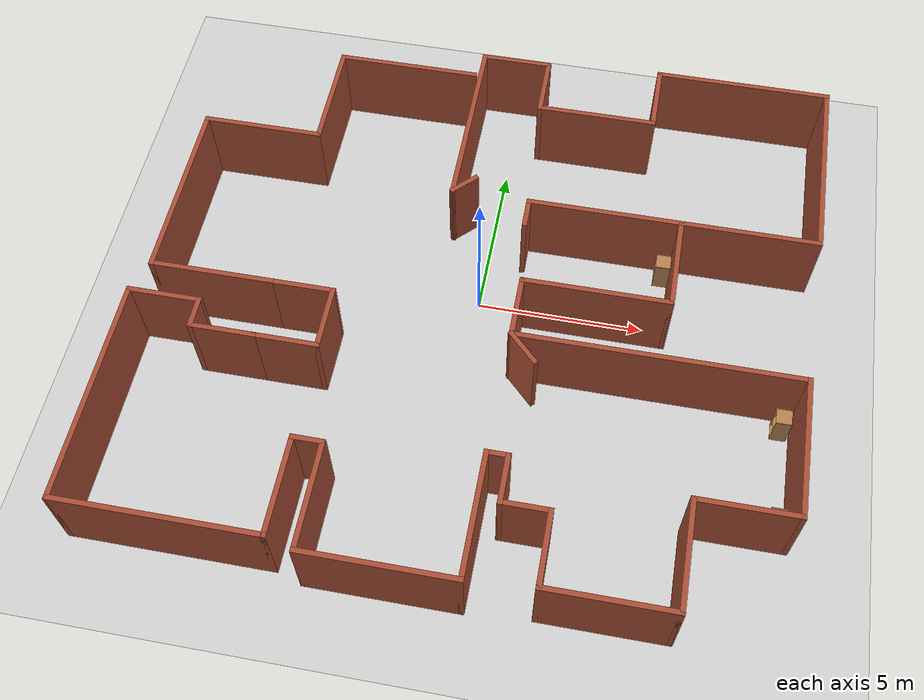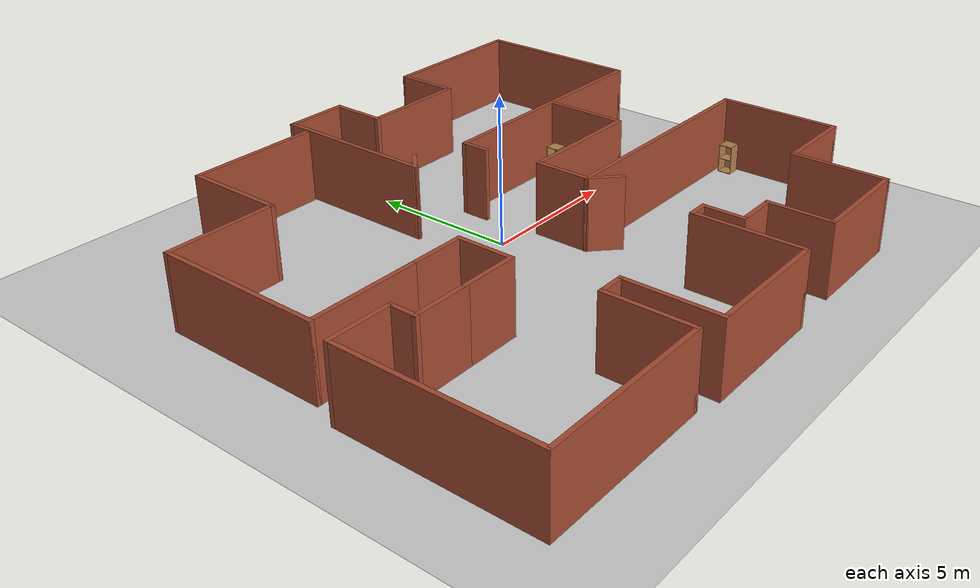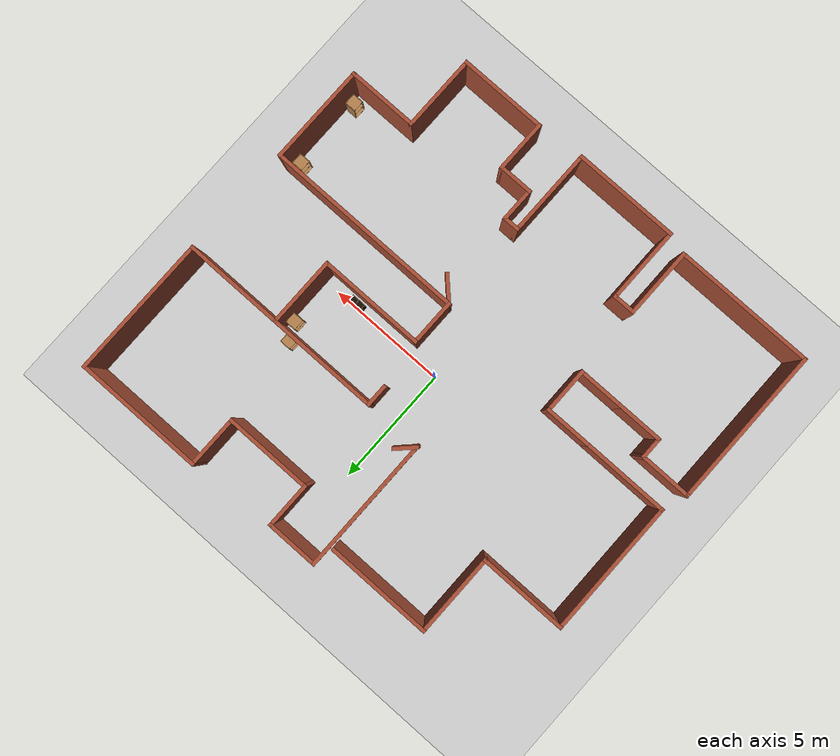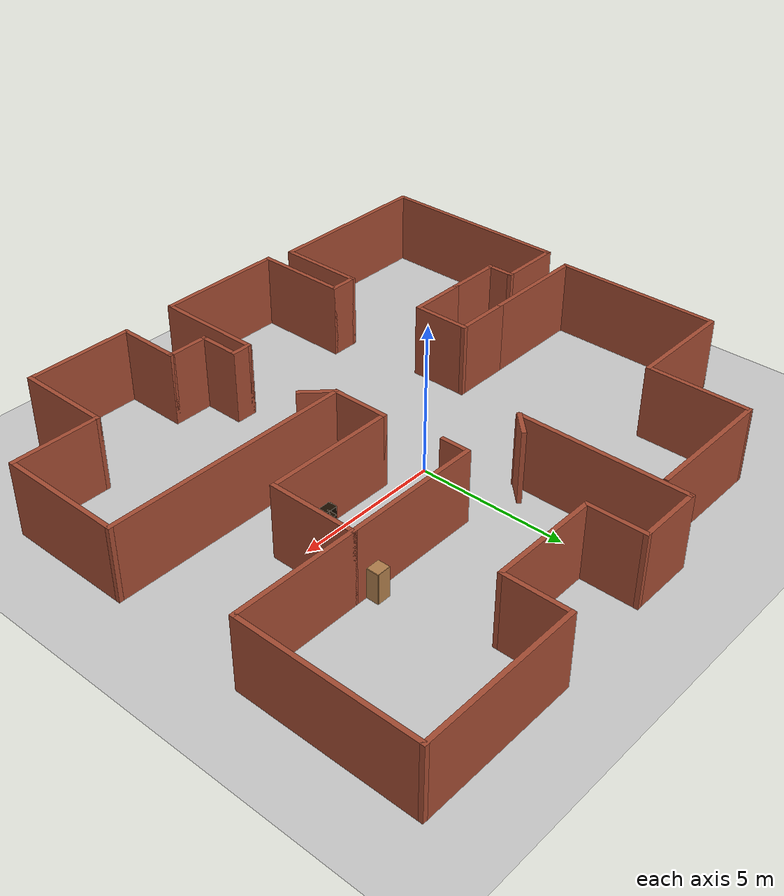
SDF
<sdf version="1.6">
 <world name="default">
  <model name="ground_plane">
   <static>1</static>
   <link name="link">
    <collision name="collision">
     <geometry><plane><normal>0 0 1</normal><size>100 100</size></plane></geometry>
     <surface>
      <contact><collide_bitmask>65535</collide_bitmask></contact>
      <friction><ode><mu>100</mu><mu2>50</mu2></ode></friction>
     </surface>
    </collision>
    <visual name="visual">
     <cast_shadows>0</cast_shadows>
     <geometry><plane><normal>0 0 1</normal><size>100 100</size></plane></geometry>
     <material>
      <script><uri>file://media/materials/scripts/gazebo.material</uri><name>Gazebo/Grey</name></script>
     </material>
    </visual>
   </link>
  </model>
  <model name="map_115">
   <pose>0.008465 -0.705591 0 0 -0 0</pose>
   <link name="Wall_16">
    <collision name="Wall_16_Collision">
     <geometry><box><size>6 0.15 2.5</size></box></geometry>
     <pose>0 0 1.25 0 -0 0</pose>
    </collision>
    <visual name="Wall_16_Visual">
     <pose>0 0 1.25 0 -0 0</pose>
     <geometry><box><size>6 0.15 2.5</size></box></geometry>
     <material>
      <script><uri>file://media/materials/scripts/gazebo.material</uri><name>Gazebo/Bricks</name></script>
      <ambient>1 1 1 1</ambient>
     </material>
     <meta><layer>0</layer></meta>
    </visual>
    <pose>-6.85 -8.7 0 0 -0 0</pose>
   </link>
   <link name="Wall_17">
    <collision name="Wall_17_Collision">
     <geometry><box><size>3 0.15 2.5</size></box></geometry>
     <pose>0 0 1.25 0 -0 0</pose>
    </collision>
    <visual name="Wall_17_Visual">
     <pose>0 0 1.25 0 -0 0</pose>
     <geometry><box><size>3 0.15 2.5</size></box></geometry>
     <material>
      <script><uri>file://media/materials/scripts/gazebo.material</uri><name>Gazebo/Bricks</name></script>
      <ambient>1 1 1 1</ambient>
     </material>
     <meta><layer>0</layer></meta>
    </visual>
    <pose>-3.925 -7.275 0 0 -0 1.5708</pose>
   </link>
   <link name="Wall_18">
    <collision name="Wall_18_Collision">
     <geometry><box><size>1 0.15 2.5</size></box></geometry>
     <pose>0 0 1.25 0 -0 0</pose>
    </collision>
    <visual name="Wall_18_Visual">
     <pose>0 0 1.25 0 -0 0</pose>
     <geometry><box><size>1 0.15 2.5</size></box></geometry>
     <material>
      <script><uri>file://media/materials/scripts/gazebo.material</uri><name>Gazebo/Bricks</name></script>
      <ambient>1 1 1 1</ambient>
     </material>
     <meta><layer>0</layer></meta>
    </visual>
    <pose>-3.5 -5.85 0 0 -0 0</pose>
   </link>
   <link name="Wall_19">
    <collision name="Wall_19_Collision">
     <geometry><box><size>3.25 0.15 2.5</size></box></geometry>
     <pose>0 0 1.25 0 -0 0</pose>
    </collision>
    <visual name="Wall_19_Visual">
     <pose>0 0 1.25 0 -0 0</pose>
     <geometry><box><size>3.25 0.15 2.5</size></box></geometry>
     <material>
      <script><uri>file://media/materials/scripts/gazebo.material</uri><name>Gazebo/Bricks</name></script>
      <ambient>1 1 1 1</ambient>
     </material>
     <meta><layer>0</layer></meta>
    </visual>
    <pose>-3.075 -7.4 0 0 -0 -1.5708</pose>
   </link>
   <link name="Wall_20">
    <collision name="Wall_20_Collision">
     <geometry><box><size>4.5 0.15 2.5</size></box></geometry>
     <pose>0 0 1.25 0 -0 0</pose>
    </collision>
    <visual name="Wall_20_Visual">
     <pose>0 0 1.25 0 -0 0</pose>
     <geometry><box><size>4.5 0.15 2.5</size></box></geometry>
     <material>
      <script><uri>file://media/materials/scripts/gazebo.material</uri><name>Gazebo/Bricks</name></script>
      <ambient>1 1 1 1</ambient>
     </material>
     <meta><layer>0</layer></meta>
    </visual>
    <pose>-0.9 -8.95 0 0 -0 0</pose>
   </link>
   <link name="Wall_21">
    <collision name="Wall_21_Collision">
     <geometry><box><size>3.75 0.15 2.5</size></box></geometry>
     <pose>0 0 1.25 0 -0 0</pose>
    </collision>
    <visual name="Wall_21_Visual">
     <pose>0 0 1.25 0 -0 0</pose>
     <geometry><box><size>3.75 0.15 2.5</size></box></geometry>
     <material>
      <script><uri>file://media/materials/scripts/gazebo.material</uri><name>Gazebo/Bricks</name></script>
      <ambient>1 1 1 1</ambient>
     </material>
     <meta><layer>0</layer></meta>
    </visual>
    <pose>1.275 -7.15 0 0 -0 1.5708</pose>
   </link>
   <link name="Wall_22">
    <collision name="Wall_22_Collision">
     <geometry><box><size>0.75 0.15 2.5</size></box></geometry>
     <pose>0 0 1.25 0 -0 0</pose>
    </collision>
    <visual name="Wall_22_Visual">
     <pose>0 0 1.25 0 -0 0</pose>
     <geometry><box><size>0.75 0.15 2.5</size></box></geometry>
     <material>
      <script><uri>file://media/materials/scripts/gazebo.material</uri><name>Gazebo/Bricks</name></script>
      <ambient>1 1 1 1</ambient>
     </material>
     <meta><layer>0</layer></meta>
    </visual>
    <pose>1.575 -5.35 0 0 -0 0</pose>
   </link>
   <link name="Wall_23">
    <collision name="Wall_23_Collision">
     <geometry><box><size>1.5 0.15 2.5</size></box></geometry>
     <pose>0 0 1.25 0 -0 0</pose>
    </collision>
    <visual name="Wall_23_Visual">
     <pose>0 0 1.25 0 -0 0</pose>
     <geometry><box><size>1.5 0.15 2.5</size></box></geometry>
     <material>
      <script><uri>file://media/materials/scripts/gazebo.material</uri><name>Gazebo/Bricks</name></script>
      <ambient>1 1 1 1</ambient>
     </material>
     <meta><layer>0</layer></meta>
    </visual>
    <pose>1.875 -6.025 0 0 -0 -1.5708</pose>
   </link>
   <link name="Wall_24">
    <collision name="Wall_24_Collision">
     <geometry><box><size>1.5 0.15 2.5</size></box></geometry>
     <pose>0 0 1.25 0 -0 0</pose>
    </collision>
    <visual name="Wall_24_Visual">
     <pose>0 0 1.25 0 -0 0</pose>
     <geometry><box><size>1.5 0.15 2.5</size></box></geometry>
     <material>
      <script><uri>file://media/materials/scripts/gazebo.material</uri><name>Gazebo/Bricks</name></script>
      <ambient>1 1 1 1</ambient>
     </material>
     <meta><layer>0</layer></meta>
    </visual>
    <pose>2.55 -6.7 0 0 -0 0</pose>
   </link>
   <link name="Wall_25">
    <collision name="Wall_25_Collision">
     <geometry><box><size>2.25 0.15 2.5</size></box></geometry>
     <pose>0 0 1.25 0 -0 0</pose>
    </collision>
    <visual name="Wall_25_Visual">
     <pose>0 0 1.25 0 -0 0</pose>
     <geometry><box><size>2.25 0.15 2.5</size></box></geometry>
     <material>
      <script><uri>file://media/materials/scripts/gazebo.material</uri><name>Gazebo/Bricks</name></script>
      <ambient>1 1 1 1</ambient>
     </material>
     <meta><layer>0</layer></meta>
    </visual>
    <pose>3.225 -7.75 0 0 -0 -1.5708</pose>
   </link>
   <link name="Wall_26">
    <collision name="Wall_26_Collision">
     <geometry><box><size>3.75 0.15 2.5</size></box></geometry>
     <pose>0 0 1.25 0 -0 0</pose>
    </collision>
    <visual name="Wall_26_Visual">
     <pose>0 0 1.25 0 -0 0</pose>
     <geometry><box><size>3.75 0.15 2.5</size></box></geometry>
     <material>
      <script><uri>file://media/materials/scripts/gazebo.material</uri><name>Gazebo/Bricks</name></script>
      <ambient>1 1 1 1</ambient>
     </material>
     <meta><layer>0</layer></meta>
    </visual>
    <pose>5.025 -8.8 0 0 -0 0</pose>
   </link>
   <link name="Wall_27">
    <collision name="Wall_27_Collision">
     <geometry><box><size>3.25 0.15 2.5</size></box></geometry>
     <pose>0 0 1.25 0 -0 0</pose>
    </collision>
    <visual name="Wall_27_Visual">
     <pose>0 0 1.25 0 -0 0</pose>
     <geometry><box><size>3.25 0.15 2.5</size></box></geometry>
     <material>
      <script><uri>file://media/materials/scripts/gazebo.material</uri><name>Gazebo/Bricks</name></script>
      <ambient>1 1 1 1</ambient>
     </material>
     <meta><layer>0</layer></meta>
    </visual>
    <pose>6.825 -7.25 0 0 -0 1.5708</pose>
   </link>
   <link name="Wall_28">
    <collision name="Wall_28_Collision">
     <geometry><box><size>3 0.15 2.5</size></box></geometry>
     <pose>0 0 1.25 0 -0 0</pose>
    </collision>
    <visual name="Wall_28_Visual">
     <pose>0 0 1.25 0 -0 0</pose>
     <geometry><box><size>3 0.15 2.5</size></box></geometry>
     <material>
      <script><uri>file://media/materials/scripts/gazebo.material</uri><name>Gazebo/Bricks</name></script>
      <ambient>1 1 1 1</ambient>
     </material>
     <meta><layer>0</layer></meta>
    </visual>
    <pose>8.25 -5.7 0 0 -0 0</pose>
   </link>
   <link name="Wall_3">
    <collision name="Wall_3_Collision">
     <geometry><box><size>5.75 0.15 2.5</size></box></geometry>
     <pose>0 0 1.25 0 -0 0</pose>
    </collision>
    <visual name="Wall_3_Visual">
     <pose>0 0 1.25 0 -0 0</pose>
     <geometry><box><size>5.75 0.15 2.5</size></box></geometry>
     <material>
      <script><uri>file://media/materials/scripts/gazebo.material</uri><name>Gazebo/Bricks</name></script>
      <ambient>1 1 1 1</ambient>
     </material>
     <meta><layer>0</layer></meta>
    </visual>
    <pose>-9.425 1.7 0 0 -0 -1.5708</pose>
   </link>
   <link name="Wall_32">
    <collision name="Wall_32_Collision">
     <geometry><box><size>4.25 0.15 2.5</size></box></geometry>
     <pose>0 0 1.25 0 -0 0</pose>
    </collision>
    <visual name="Wall_32_Visual">
     <pose>0 0 1.25 0 -0 0</pose>
     <geometry><box><size>4.25 0.15 2.5</size></box></geometry>
     <material>
      <script><uri>file://media/materials/scripts/gazebo.material</uri><name>Gazebo/Bricks</name></script>
      <ambient>1 1 1 1</ambient>
     </material>
     <meta><layer>0</layer></meta>
    </visual>
    <pose>9.675 -3.65 0 0 -0 1.5708</pose>
   </link>
   <link name="Wall_33">
    <collision name="Wall_33_Collision">
     <geometry><box><size>8.5 0.15 2.5</size></box></geometry>
     <pose>0 0 1.25 0 -0 0</pose>
    </collision>
    <visual name="Wall_33_Visual">
     <pose>0 0 1.25 0 -0 0</pose>
     <geometry><box><size>8.5 0.15 2.5</size></box></geometry>
     <material>
      <script><uri>file://media/materials/scripts/gazebo.material</uri><name>Gazebo/Bricks</name></script>
      <ambient>1 1 1 1</ambient>
     </material>
     <meta><layer>0</layer></meta>
    </visual>
    <pose>5.5 -1.6 0 0 -0 3.14159</pose>
   </link>
   <link name="Wall_34">
    <collision name="Wall_34_Collision">
     <geometry><box><size>1.25 0.15 2.5</size></box></geometry>
     <pose>0 0 1.25 0 -0 0</pose>
    </collision>
    <visual name="Wall_34_Visual">
     <pose>0 0 1.25 0 -0 0</pose>
     <geometry><box><size>1.25 0.15 2.5</size></box></geometry>
     <material>
      <script><uri>file://media/materials/scripts/gazebo.material</uri><name>Gazebo/Bricks</name></script>
      <ambient>1 1 1 1</ambient>
     </material>
     <meta><layer>0</layer></meta>
    </visual>
    <pose>1.71391 -1.98891 0 0 -0 -0.785398</pose>
   </link>
   <link name="Wall_36">
    <collision name="Wall_36_Collision">
     <geometry><box><size>2 0.15 2.5</size></box></geometry>
     <pose>0 0 1.25 0 -0 0</pose>
    </collision>
    <visual name="Wall_36_Visual">
     <pose>0 0 1.25 0 -0 0</pose>
     <geometry><box><size>2 0.15 2.5</size></box></geometry>
     <material>
      <script><uri>file://media/materials/scripts/gazebo.material</uri><name>Gazebo/Bricks</name></script>
      <ambient>1 1 1 1</ambient>
     </material>
     <meta><layer>0</layer></meta>
    </visual>
    <pose>1.325 -0.675 0 0 -0 1.5708</pose>
   </link>
   <link name="Wall_37">
    <collision name="Wall_37_Collision">
     <geometry><box><size>4.5 0.15 2.5</size></box></geometry>
     <pose>0 0 1.25 0 -0 0</pose>
    </collision>
    <visual name="Wall_37_Visual">
     <pose>0 0 1.25 0 -0 0</pose>
     <geometry><box><size>4.5 0.15 2.5</size></box></geometry>
     <material>
      <script><uri>file://media/materials/scripts/gazebo.material</uri><name>Gazebo/Bricks</name></script>
      <ambient>1 1 1 1</ambient>
     </material>
     <meta><layer>0</layer></meta>
    </visual>
    <pose>3.5 0.25 0 0 -0 0</pose>
   </link>
   <link name="Wall_38">
    <collision name="Wall_38_Collision">
     <geometry><box><size>3 0.15 2.5</size></box></geometry>
     <pose>0 0 1.25 0 -0 0</pose>
    </collision>
    <visual name="Wall_38_Visual">
     <pose>0 0 1.25 0 -0 0</pose>
     <geometry><box><size>3 0.15 2.5</size></box></geometry>
     <material>
      <script><uri>file://media/materials/scripts/gazebo.material</uri><name>Gazebo/Bricks</name></script>
      <ambient>1 1 1 1</ambient>
     </material>
     <meta><layer>0</layer></meta>
    </visual>
    <pose>5.675 1.675 0 0 -0 1.5708</pose>
   </link>
   <link name="Wall_39">
    <collision name="Wall_39_Collision">
     <geometry><box><size>4.75 0.15 2.5</size></box></geometry>
     <pose>0 0 1.25 0 -0 0</pose>
    </collision>
    <visual name="Wall_39_Visual">
     <pose>0 0 1.25 0 -0 0</pose>
     <geometry><box><size>4.75 0.15 2.5</size></box></geometry>
     <material>
      <script><uri>file://media/materials/scripts/gazebo.material</uri><name>Gazebo/Bricks</name></script>
      <ambient>1 1 1 1</ambient>
     </material>
     <meta><layer>0</layer></meta>
    </visual>
    <pose>3.375 3.1 0 0 -0 3.14159</pose>
   </link>
   <link name="Wall_4">
    <collision name="Wall_4_Collision">
     <geometry><box><size>3.75 0.15 2.5</size></box></geometry>
     <pose>0 0 1.25 0 -0 0</pose>
    </collision>
    <visual name="Wall_4_Visual">
     <pose>0 0 1.25 0 -0 0</pose>
     <geometry><box><size>3.75 0.15 2.5</size></box></geometry>
     <material>
      <script><uri>file://media/materials/scripts/gazebo.material</uri><name>Gazebo/Bricks</name></script>
      <ambient>1 1 1 1</ambient>
     </material>
     <meta><layer>0</layer></meta>
    </visual>
    <pose>-7.625 -1.1 0 0 -0 0</pose>
   </link>
   <link name="Wall_42">
    <collision name="Wall_42_Collision">
     <geometry><box><size>4.25 0.15 2.5</size></box></geometry>
     <pose>0 0 1.25 0 -0 0</pose>
    </collision>
    <visual name="Wall_42_Visual">
     <pose>0 0 1.25 0 -0 0</pose>
     <geometry><box><size>4.25 0.15 2.5</size></box></geometry>
     <material>
      <script><uri>file://media/materials/scripts/gazebo.material</uri><name>Gazebo/Bricks</name></script>
      <ambient>1 1 1 1</ambient>
     </material>
     <meta><layer>0</layer></meta>
    </visual>
    <pose>7.725 3.1 0 0 -0 0</pose>
   </link>
   <link name="Wall_43">
    <collision name="Wall_43_Collision">
     <geometry><box><size>6 0.15 2.5</size></box></geometry>
     <pose>0 0 1.25 0 -0 0</pose>
    </collision>
    <visual name="Wall_43_Visual">
     <pose>0 0 1.25 0 -0 0</pose>
     <geometry><box><size>6 0.15 2.5</size></box></geometry>
     <material>
      <script><uri>file://media/materials/scripts/gazebo.material</uri><name>Gazebo/Bricks</name></script>
      <ambient>1 1 1 1</ambient>
     </material>
     <meta><layer>0</layer></meta>
    </visual>
    <pose>9.775 6.025 0 0 -0 1.5708</pose>
   </link>
   <link name="Wall_44">
    <collision name="Wall_44_Collision">
     <geometry><box><size>5.5 0.15 2.5</size></box></geometry>
     <pose>0 0 1.25 0 -0 0</pose>
    </collision>
    <visual name="Wall_44_Visual">
     <pose>0 0 1.25 0 -0 0</pose>
     <geometry><box><size>5.5 0.15 2.5</size></box></geometry>
     <material>
      <script><uri>file://media/materials/scripts/gazebo.material</uri><name>Gazebo/Bricks</name></script>
      <ambient>1 1 1 1</ambient>
     </material>
     <meta><layer>0</layer></meta>
    </visual>
    <pose>7.1 8.95 0 0 -0 3.14159</pose>
   </link>
   <link name="Wall_45">
    <collision name="Wall_45_Collision">
     <geometry><box><size>2.25 0.15 2.5</size></box></geometry>
     <pose>0 0 1.25 0 -0 0</pose>
    </collision>
    <visual name="Wall_45_Visual">
     <pose>0 0 1.25 0 -0 0</pose>
     <geometry><box><size>2.25 0.15 2.5</size></box></geometry>
     <material>
      <script><uri>file://media/materials/scripts/gazebo.material</uri><name>Gazebo/Bricks</name></script>
      <ambient>1 1 1 1</ambient>
     </material>
     <meta><layer>0</layer></meta>
    </visual>
    <pose>4.425 7.9 0 0 -0 -1.5708</pose>
   </link>
   <link name="Wall_46">
    <collision name="Wall_46_Collision">
     <geometry><box><size>3.75 0.15 2.5</size></box></geometry>
     <pose>0 0 1.25 0 -0 0</pose>
    </collision>
    <visual name="Wall_46_Visual">
     <pose>0 0 1.25 0 -0 0</pose>
     <geometry><box><size>3.75 0.15 2.5</size></box></geometry>
     <material>
      <script><uri>file://media/materials/scripts/gazebo.material</uri><name>Gazebo/Bricks</name></script>
      <ambient>1 1 1 1</ambient>
     </material>
     <meta><layer>0</layer></meta>
    </visual>
    <pose>2.625 6.85 0 0 -0 3.14159</pose>
   </link>
   <link name="Wall_47">
    <collision name="Wall_47_Collision">
     <geometry><box><size>2 0.15 2.5</size></box></geometry>
     <pose>0 0 1.25 0 -0 0</pose>
    </collision>
    <visual name="Wall_47_Visual">
     <pose>0 0 1.25 0 -0 0</pose>
     <geometry><box><size>2 0.15 2.5</size></box></geometry>
     <material>
      <script><uri>file://media/materials/scripts/gazebo.material</uri><name>Gazebo/Bricks</name></script>
      <ambient>1 1 1 1</ambient>
     </material>
     <meta><layer>0</layer></meta>
    </visual>
    <pose>0.825 7.775 0 0 -0 1.5708</pose>
   </link>
   <link name="Wall_48">
    <collision name="Wall_48_Collision">
     <geometry><box><size>2.25 0.15 2.5</size></box></geometry>
     <pose>0 0 1.25 0 -0 0</pose>
    </collision>
    <visual name="Wall_48_Visual">
     <pose>0 0 1.25 0 -0 0</pose>
     <geometry><box><size>2.25 0.15 2.5</size></box></geometry>
     <material>
      <script><uri>file://media/materials/scripts/gazebo.material</uri><name>Gazebo/Bricks</name></script>
      <ambient>1 1 1 1</ambient>
     </material>
     <meta><layer>0</layer></meta>
    </visual>
    <pose>-0.225 8.7 0 0 -0 3.14159</pose>
   </link>
   <link name="Wall_51">
    <collision name="Wall_51_Collision">
     <geometry><box><size>5.75 0.15 2.5</size></box></geometry>
     <pose>0 0 1.25 0 -0 0</pose>
    </collision>
    <visual name="Wall_51_Visual">
     <pose>0 0 1.25 0 -0 0</pose>
     <geometry><box><size>5.75 0.15 2.5</size></box></geometry>
     <material>
      <script><uri>file://media/materials/scripts/gazebo.material</uri><name>Gazebo/Bricks</name></script>
      <ambient>1 1 1 1</ambient>
     </material>
     <meta><layer>0</layer></meta>
    </visual>
    <pose>-1.275 5.9 0 0 -0 -1.5708</pose>
   </link>
   <link name="Wall_52">
    <collision name="Wall_52_Collision">
     <geometry><box><size>1 0.15 2.5</size></box></geometry>
     <pose>0 0 1.25 0 -0 0</pose>
    </collision>
    <visual name="Wall_52_Visual">
     <pose>0 0 1.25 0 -0 0</pose>
     <geometry><box><size>1 0.15 2.5</size></box></geometry>
     <material>
      <script><uri>file://media/materials/scripts/gazebo.material</uri><name>Gazebo/Bricks</name></script>
      <ambient>1 1 1 1</ambient>
     </material>
     <meta><layer>0</layer></meta>
    </visual>
    <pose>-0.97448 3.40052 0 0 -0 0.785398</pose>
   </link>
   <link name="Wall_54">
    <collision name="Wall_54_Collision">
     <geometry><box><size>1 0.15 2.5</size></box></geometry>
     <pose>0 0 1.25 0 -0 0</pose>
    </collision>
    <visual name="Wall_54_Visual">
     <pose>0 0 1.25 0 -0 0</pose>
     <geometry><box><size>1 0.15 2.5</size></box></geometry>
     <material>
      <script><uri>file://media/materials/scripts/gazebo.material</uri><name>Gazebo/Bricks</name></script>
      <ambient>1 1 1 1</ambient>
     </material>
     <meta><layer>0</layer></meta>
    </visual>
    <pose>1.075 2.675 0 0 -0 -1.5708</pose>
   </link>
   <link name="Wall_56">
    <collision name="Wall_56_Collision">
     <geometry><box><size>3.75 0.15 2.5</size></box></geometry>
     <pose>0 0 1.25 0 -0 0</pose>
    </collision>
    <visual name="Wall_56_Visual">
     <pose>0 0 1.25 0 -0 0</pose>
     <geometry><box><size>3.75 0.15 2.5</size></box></geometry>
     <material>
      <script><uri>file://media/materials/scripts/gazebo.material</uri><name>Gazebo/Bricks</name></script>
      <ambient>1 1 1 1</ambient>
     </material>
     <meta><layer>0</layer></meta>
    </visual>
    <pose>-7.625 4.5 0 0 -0 0</pose>
   </link>
   <link name="Wall_57">
    <collision name="Wall_57_Collision">
     <geometry><box><size>3.5 0.15 2.5</size></box></geometry>
     <pose>0 0 1.25 0 -0 0</pose>
    </collision>
    <visual name="Wall_57_Visual">
     <pose>0 0 1.25 0 -0 0</pose>
     <geometry><box><size>3.5 0.15 2.5</size></box></geometry>
     <material>
      <script><uri>file://media/materials/scripts/gazebo.material</uri><name>Gazebo/Bricks</name></script>
      <ambient>1 1 1 1</ambient>
     </material>
     <meta><layer>0</layer></meta>
    </visual>
    <pose>-5.825 6.175 0 0 -0 1.5708</pose>
   </link>
   <link name="Wall_58">
    <collision name="Wall_58_Collision">
     <geometry><box><size>4.5 0.15 2.5</size></box></geometry>
     <pose>0 0 1.25 0 -0 0</pose>
    </collision>
    <visual name="Wall_58_Visual">
     <pose>0 0 1.25 0 -0 0</pose>
     <geometry><box><size>4.5 0.15 2.5</size></box></geometry>
     <material>
      <script><uri>file://media/materials/scripts/gazebo.material</uri><name>Gazebo/Bricks</name></script>
      <ambient>1 1 1 1</ambient>
     </material>
     <meta><layer>0</layer></meta>
    </visual>
    <pose>-3.65 7.85 0 0 -0 0</pose>
   </link>
   <link name="Wall_6">
    <collision name="Wall_6_Collision">
     <geometry><box><size>2 0.15 2.5</size></box></geometry>
     <pose>0 0 1.25 0 -0 0</pose>
    </collision>
    <visual name="Wall_6_Visual">
     <pose>0 0 1.25 0 -0 0</pose>
     <geometry><box><size>2 0.15 2.5</size></box></geometry>
     <material>
      <script><uri>file://media/materials/scripts/gazebo.material</uri><name>Gazebo/Bricks</name></script>
      <ambient>1 1 1 1</ambient>
     </material>
     <meta><layer>0</layer></meta>
    </visual>
    <pose>-6.75 -2.95 0 0 -0 3.14159</pose>
   </link>
   <link name="Wall_60">
    <collision name="Wall_60_Collision">
     <geometry><box><size>2 0.15 2.5</size></box></geometry>
     <pose>0 0 1.25 0 -0 0</pose>
    </collision>
    <visual name="Wall_60_Visual">
     <pose>0 0 1.25 0 -0 0</pose>
     <geometry><box><size>2 0.15 2.5</size></box></geometry>
     <material>
      <script><uri>file://media/materials/scripts/gazebo.material</uri><name>Gazebo/Bricks</name></script>
      <ambient>1 1 1 1</ambient>
     </material>
     <meta><layer>0</layer></meta>
    </visual>
    <pose>-4.9 -2.95 0 0 -0 0</pose>
   </link>
   <link name="Wall_61">
    <collision name="Wall_61_Collision">
     <geometry><box><size>2 0.15 2.5</size></box></geometry>
     <pose>0 0 1.25 0 -0 0</pose>
    </collision>
    <visual name="Wall_61_Visual">
     <pose>0 0 1.25 0 -0 0</pose>
     <geometry><box><size>2 0.15 2.5</size></box></geometry>
     <material>
      <script><uri>file://media/materials/scripts/gazebo.material</uri><name>Gazebo/Bricks</name></script>
      <ambient>1 1 1 1</ambient>
     </material>
     <meta><layer>0</layer></meta>
    </visual>
    <pose>-3.975 -2.025 0 0 -0 1.5708</pose>
   </link>
   <link name="Wall_62">
    <collision name="Wall_62_Collision">
     <geometry><box><size>2 0.15 2.5</size></box></geometry>
     <pose>0 0 1.25 0 -0 0</pose>
    </collision>
    <visual name="Wall_62_Visual">
     <pose>0 0 1.25 0 -0 0</pose>
     <geometry><box><size>2 0.15 2.5</size></box></geometry>
     <material>
      <script><uri>file://media/materials/scripts/gazebo.material</uri><name>Gazebo/Bricks</name></script>
      <ambient>1 1 1 1</ambient>
     </material>
     <meta><layer>0</layer></meta>
    </visual>
    <pose>-4.9 -1.1 0 0 -0 3.14159</pose>
   </link>
   <link name="Wall_7">
    <collision name="Wall_7_Collision">
     <geometry><box><size>1 0.15 2.5</size></box></geometry>
     <pose>0 0 1.25 0 -0 0</pose>
    </collision>
    <visual name="Wall_7_Visual">
     <pose>0 0 1.25 0 -0 0</pose>
     <geometry><box><size>1 0.15 2.5</size></box></geometry>
     <material>
      <script><uri>file://media/materials/scripts/gazebo.material</uri><name>Gazebo/Bricks</name></script>
      <ambient>1 1 1 1</ambient>
     </material>
     <meta><layer>0</layer></meta>
    </visual>
    <pose>-7.675 -2.525 0 0 -0 1.5708</pose>
   </link>
   <link name="Wall_8">
    <collision name="Wall_8_Collision">
     <geometry><box><size>2.25 0.15 2.5</size></box></geometry>
     <pose>0 0 1.25 0 -0 0</pose>
    </collision>
    <visual name="Wall_8_Visual">
     <pose>0 0 1.25 0 -0 0</pose>
     <geometry><box><size>2.25 0.15 2.5</size></box></geometry>
     <material>
      <script><uri>file://media/materials/scripts/gazebo.material</uri><name>Gazebo/Bricks</name></script>
      <ambient>1 1 1 1</ambient>
     </material>
     <meta><layer>0</layer></meta>
    </visual>
    <pose>-8.725 -2.1 0 0 -0 3.14159</pose>
   </link>
   <link name="Wall_9">
    <collision name="Wall_9_Collision">
     <geometry><box><size>6.75 0.15 2.5</size></box></geometry>
     <pose>0 0 1.25 0 -0 0</pose>
    </collision>
    <visual name="Wall_9_Visual">
     <pose>0 0 1.25 0 -0 0</pose>
     <geometry><box><size>6.75 0.15 2.5</size></box></geometry>
     <material>
      <script><uri>file://media/materials/scripts/gazebo.material</uri><name>Gazebo/Bricks</name></script>
      <ambient>1 1 1 1</ambient>
     </material>
     <meta><layer>0</layer></meta>
    </visual>
    <pose>-9.775 -5.4 0 0 -0 -1.5708</pose>
   </link>
   <static>1</static>
  </model>
  <model name="cabinet">
   <static>1</static>
   <link name="cabinet_bottom_plate">
    <inertial>
     <pose>0 0 -1 0 -0 0</pose>
     <inertia><ixx>2.05</ixx><ixy>0</ixy><ixz>0</ixz><iyy>2.05</iyy><iyz>0</iyz><izz>2.05</izz></inertia>
     <mass>25</mass>
    </inertial>
    <collision name="cabinet_bottom_plate_geom">
     <pose>0 0 0.01 0 -0 0</pose>
     <geometry><box><size>0.45 0.45 0.02</size></box></geometry>
    </collision>
    <visual name="cabinet_bottom_plate_geom_visual">
     <pose>0 0 0.01 0 -0 0</pose>
     <geometry><box><size>0.45 0.45 0.02</size></box></geometry>
     <material>
      <script><uri>file://media/materials/scripts/gazebo.material</uri><name>Gazebo/Wood</name></script>
     </material>
    </visual>
    <collision name="cabinet_bottom_plate_geom_cabinet_back_plate">
     <pose>0.235 0 0.51 0 -0 0</pose>
     <geometry><box><size>0.02 0.45 1.02</size></box></geometry>
    </collision>
    <visual name="cabinet_bottom_plate_geom_cabinet_back_plate_visual">
     <pose>0.235 0 0.51 0 -0 0</pose>
     <geometry><box><size>0.02 0.45 1.02</size></box></geometry>
     <material>
      <script><uri>file://media/materials/scripts/gazebo.material</uri><name>Gazebo/Wood</name></script>
     </material>
    </visual>
    <collision name="cabinet_bottom_plate_geom_cabinet_left_plate">
     <pose>0 0.235 0.51 0 -0 0</pose>
     <geometry><box><size>0.45 0.02 1.02</size></box></geometry>
    </collision>
    <visual name="cabinet_bottom_plate_geom_cabinet_left_plate_visual">
     <pose>0 0.235 0.51 0 -0 0</pose>
     <geometry><box><size>0.45 0.02 1.02</size></box></geometry>
     <material>
      <script><uri>file://media/materials/scripts/gazebo.material</uri><name>Gazebo/Wood</name></script>
     </material>
    </visual>
    <collision name="cabinet_bottom_plate_geom_cabinet_middle_plate">
     <pose>0 0 0.51 0 -0 0</pose>
     <geometry><box><size>0.45 0.45 0.02</size></box></geometry>
    </collision>
    <visual name="cabinet_bottom_plate_geom_cabinet_middle_plate_visual">
     <pose>0 0 0.51 0 -0 0</pose>
     <geometry><box><size>0.45 0.45 0.02</size></box></geometry>
     <material>
      <script><uri>file://media/materials/scripts/gazebo.material</uri><name>Gazebo/Wood</name></script>
     </material>
    </visual>
    <collision name="cabinet_bottom_plate_geom_cabinet_right_plate">
     <pose>0 -0.235 0.51 0 -0 0</pose>
     <geometry><box><size>0.45 0.02 1.02</size></box></geometry>
    </collision>
    <visual name="cabinet_bottom_plate_geom_cabinet_right_plate_visual">
     <pose>0 -0.235 0.51 0 -0 0</pose>
     <geometry><box><size>0.45 0.02 1.02</size></box></geometry>
     <material>
      <script><uri>file://media/materials/scripts/gazebo.material</uri><name>Gazebo/Wood</name></script>
     </material>
    </visual>
    <collision name="cabinet_bottom_plate_geom_cabinet_top_plate">
     <pose>0 0 1.01 0 -0 0</pose>
     <geometry><box><size>0.45 0.45 0.02</size></box></geometry>
    </collision>
    <visual name="cabinet_bottom_plate_geom_cabinet_top_plate_visual">
     <pose>0 0 1.01 0 -0 0</pose>
     <geometry><box><size>0.45 0.45 0.02</size></box></geometry>
     <material>
      <script><uri>file://media/materials/scripts/gazebo.material</uri><name>Gazebo/Wood</name></script>
     </material>
    </visual>
   </link>
   <pose>9.29211 -2.75388 0 0 -0 0</pose>
  </model>
  <model name="cabinet_0">
   <static>1</static>
   <link name="cabinet_bottom_plate">
    <inertial>
     <pose>0 0 -1 0 -0 0</pose>
     <inertia><ixx>2.05</ixx><ixy>0</ixy><ixz>0</ixz><iyy>2.05</iyy><iyz>0</iyz><izz>2.05</izz></inertia>
     <mass>25</mass>
    </inertial>
    <collision name="cabinet_bottom_plate_geom">
     <pose>0 0 0.01 0 -0 0</pose>
     <geometry><box><size>0.45 0.45 0.02</size></box></geometry>
    </collision>
    <visual name="cabinet_bottom_plate_geom_visual">
     <pose>0 0 0.01 0 -0 0</pose>
     <geometry><box><size>0.45 0.45 0.02</size></box></geometry>
     <material>
      <script><uri>file://media/materials/scripts/gazebo.material</uri><name>Gazebo/Wood</name></script>
     </material>
    </visual>
    <collision name="cabinet_bottom_plate_geom_cabinet_back_plate">
     <pose>0.235 0 0.51 0 -0 0</pose>
     <geometry><box><size>0.02 0.45 1.02</size></box></geometry>
    </collision>
    <visual name="cabinet_bottom_plate_geom_cabinet_back_plate_visual">
     <pose>0.235 0 0.51 0 -0 0</pose>
     <geometry><box><size>0.02 0.45 1.02</size></box></geometry>
     <material>
      <script><uri>file://media/materials/scripts/gazebo.material</uri><name>Gazebo/Wood</name></script>
     </material>
    </visual>
    <collision name="cabinet_bottom_plate_geom_cabinet_left_plate">
     <pose>0 0.235 0.51 0 -0 0</pose>
     <geometry><box><size>0.45 0.02 1.02</size></box></geometry>
    </collision>
    <visual name="cabinet_bottom_plate_geom_cabinet_left_plate_visual">
     <pose>0 0.235 0.51 0 -0 0</pose>
     <geometry><box><size>0.45 0.02 1.02</size></box></geometry>
     <material>
      <script><uri>file://media/materials/scripts/gazebo.material</uri><name>Gazebo/Wood</name></script>
     </material>
    </visual>
    <collision name="cabinet_bottom_plate_geom_cabinet_middle_plate">
     <pose>0 0 0.51 0 -0 0</pose>
     <geometry><box><size>0.45 0.45 0.02</size></box></geometry>
    </collision>
    <visual name="cabinet_bottom_plate_geom_cabinet_middle_plate_visual">
     <pose>0 0 0.51 0 -0 0</pose>
     <geometry><box><size>0.45 0.45 0.02</size></box></geometry>
     <material>
      <script><uri>file://media/materials/scripts/gazebo.material</uri><name>Gazebo/Wood</name></script>
     </material>
    </visual>
    <collision name="cabinet_bottom_plate_geom_cabinet_right_plate">
     <pose>0 -0.235 0.51 0 -0 0</pose>
     <geometry><box><size>0.45 0.02 1.02</size></box></geometry>
    </collision>
    <visual name="cabinet_bottom_plate_geom_cabinet_right_plate_visual">
     <pose>0 -0.235 0.51 0 -0 0</pose>
     <geometry><box><size>0.45 0.02 1.02</size></box></geometry>
     <material>
      <script><uri>file://media/materials/scripts/gazebo.material</uri><name>Gazebo/Wood</name></script>
     </material>
    </visual>
    <collision name="cabinet_bottom_plate_geom_cabinet_top_plate">
     <pose>0 0 1.01 0 -0 0</pose>
     <geometry><box><size>0.45 0.45 0.02</size></box></geometry>
    </collision>
    <visual name="cabinet_bottom_plate_geom_cabinet_top_plate_visual">
     <pose>0 0 1.01 0 -0 0</pose>
     <geometry><box><size>0.45 0.45 0.02</size></box></geometry>
     <material>
      <script><uri>file://media/materials/scripts/gazebo.material</uri><name>Gazebo/Wood</name></script>
     </material>
    </visual>
   </link>
   <pose>9.32161 -5.83279 0 0 -0 0</pose>
  </model>
  <model name="cabinet_1">
   <static>1</static>
   <link name="cabinet_bottom_plate">
    <inertial>
     <pose>0 0 -1 0 -0 0</pose>
     <inertia><ixx>2.05</ixx><ixy>0</ixy><ixz>0</ixz><iyy>2.05</iyy><iyz>0</iyz><izz>2.05</izz></inertia>
     <mass>25</mass>
    </inertial>
    <collision name="cabinet_bottom_plate_geom">
     <pose>0 0 0.01 0 -0 0</pose>
     <geometry><box><size>0.45 0.45 0.02</size></box></geometry>
    </collision>
    <visual name="cabinet_bottom_plate_geom_visual">
     <pose>0 0 0.01 0 -0 0</pose>
     <geometry><box><size>0.45 0.45 0.02</size></box></geometry>
     <material>
      <script><uri>file://media/materials/scripts/gazebo.material</uri><name>Gazebo/Wood</name></script>
     </material>
    </visual>
    <collision name="cabinet_bottom_plate_geom_cabinet_back_plate">
     <pose>0.235 0 0.51 0 -0 0</pose>
     <geometry><box><size>0.02 0.45 1.02</size></box></geometry>
    </collision>
    <visual name="cabinet_bottom_plate_geom_cabinet_back_plate_visual">
     <pose>0.235 0 0.51 0 -0 0</pose>
     <geometry><box><size>0.02 0.45 1.02</size></box></geometry>
     <material>
      <script><uri>file://media/materials/scripts/gazebo.material</uri><name>Gazebo/Wood</name></script>
     </material>
    </visual>
    <collision name="cabinet_bottom_plate_geom_cabinet_left_plate">
     <pose>0 0.235 0.51 0 -0 0</pose>
     <geometry><box><size>0.45 0.02 1.02</size></box></geometry>
    </collision>
    <visual name="cabinet_bottom_plate_geom_cabinet_left_plate_visual">
     <pose>0 0.235 0.51 0 -0 0</pose>
     <geometry><box><size>0.45 0.02 1.02</size></box></geometry>
     <material>
      <script><uri>file://media/materials/scripts/gazebo.material</uri><name>Gazebo/Wood</name></script>
     </material>
    </visual>
    <collision name="cabinet_bottom_plate_geom_cabinet_middle_plate">
     <pose>0 0 0.51 0 -0 0</pose>
     <geometry><box><size>0.45 0.45 0.02</size></box></geometry>
    </collision>
    <visual name="cabinet_bottom_plate_geom_cabinet_middle_plate_visual">
     <pose>0 0 0.51 0 -0 0</pose>
     <geometry><box><size>0.45 0.45 0.02</size></box></geometry>
     <material>
      <script><uri>file://media/materials/scripts/gazebo.material</uri><name>Gazebo/Wood</name></script>
     </material>
    </visual>
    <collision name="cabinet_bottom_plate_geom_cabinet_right_plate">
     <pose>0 -0.235 0.51 0 -0 0</pose>
     <geometry><box><size>0.45 0.02 1.02</size></box></geometry>
    </collision>
    <visual name="cabinet_bottom_plate_geom_cabinet_right_plate_visual">
     <pose>0 -0.235 0.51 0 -0 0</pose>
     <geometry><box><size>0.45 0.02 1.02</size></box></geometry>
     <material>
      <script><uri>file://media/materials/scripts/gazebo.material</uri><name>Gazebo/Wood</name></script>
     </material>
    </visual>
    <collision name="cabinet_bottom_plate_geom_cabinet_top_plate">
     <pose>0 0 1.01 0 -0 0</pose>
     <geometry><box><size>0.45 0.45 0.02</size></box></geometry>
    </collision>
    <visual name="cabinet_bottom_plate_geom_cabinet_top_plate_visual">
     <pose>0 0 1.01 0 -0 0</pose>
     <geometry><box><size>0.45 0.45 0.02</size></box></geometry>
     <material>
      <script><uri>file://media/materials/scripts/gazebo.material</uri><name>Gazebo/Wood</name></script>
     </material>
    </visual>
   </link>
   <pose>5.38364 1.95932 0 0 -0 0</pose>
  </model>
  <model name="6_Cube_StorageE_1">
   <link name="Wall_0">
    <pose>0 0 0.01 0 -0 0</pose>
    <inertial>
     <mass>1.6201</mass>
     <inertia><ixx>0.0119</ixx><iyy>0.0631</iyy><izz>0.0513</izz><ixy>0</ixy><ixz>0</ixz><iyz>0</iyz></inertia>
    </inertial>
    <collision name="Wall_0_Collision"><geometry><box><size>0.616 0.296 0.02</size></box></geometry></collision>
    <visual name="Wall_0_Visual">
     <geometry><box><size>0.616 0.296 0.02</size></box></geometry>
     <material>
      <script><uri>file://media/materials/scripts/gazebo.material</uri><name>Gazebo/Grey</name></script>
      <ambient>0.105882 0.0509804 0 1</ambient>
     </material>
    </visual>
   </link>
   <joint name="0_2" type="fixed">
    <pose>-0.308 0 0 0 -0 0</pose>
    <parent>Wall_2</parent>
    <child>Wall_0</child>
    <axis>
     <xyz>1 0 0</xyz>
     <use_parent_model_frame>0</use_parent_model_frame>
     <limit><lower>-1e+16</lower><upper>1e+16</upper></limit>
    </axis>
   </joint>
   <joint name="0_12" type="fixed">
    <parent>Wall_12</parent>
    <child>Wall_0</child>
    <axis>
     <xyz>0 0 1</xyz>
     <use_parent_model_frame>0</use_parent_model_frame>
     <limit><lower>-1e+16</lower><upper>1e+16</upper></limit>
    </axis>
   </joint>
   <joint name="0_4" type="fixed">
    <pose>0.308 0 0 0 -0 0</pose>
    <parent>Wall_4</parent>
    <child>Wall_0</child>
    <axis>
     <xyz>1 0 0</xyz>
     <use_parent_model_frame>0</use_parent_model_frame>
     <limit><lower>-1e+16</lower><upper>1e+16</upper></limit>
    </axis>
   </joint>
   <link name="Wall_10">
    <pose>0 0 0.61 0 -0 0</pose>
    <inertial>
     <mass>1.6201</mass>
     <inertia><ixx>0.0119</ixx><iyy>0.0631</iyy><izz>0.0513</izz><ixy>0</ixy><ixz>0</ixz><iyz>0</iyz></inertia>
    </inertial>
    <collision name="Wall_10_Collision"><geometry><box><size>0.616 0.296 0.02</size></box></geometry></collision>
    <visual name="Wall_10_Visual">
     <geometry><box><size>0.616 0.296 0.02</size></box></geometry>
     <material>
      <script><uri>file://media/materials/scripts/gazebo.material</uri><name>Gazebo/Grey</name></script>
      <ambient>0.105882 0.0509804 0 1</ambient>
     </material>
    </visual>
   </link>
   <joint name="10_2" type="fixed">
    <pose>-0.308 0 0 0 -0 0</pose>
    <parent>Wall_2</parent>
    <child>Wall_10</child>
    <axis>
     <xyz>1 0 0</xyz>
     <use_parent_model_frame>0</use_parent_model_frame>
     <limit><lower>-1e+16</lower><upper>1e+16</upper></limit>
    </axis>
   </joint>
   <joint name="10_12" type="fixed">
    <parent>Wall_12</parent>
    <child>Wall_10</child>
    <axis>
     <xyz>0 0 1</xyz>
     <use_parent_model_frame>0</use_parent_model_frame>
     <limit><lower>-1e+16</lower><upper>1e+16</upper></limit>
    </axis>
   </joint>
   <joint name="10_4" type="fixed">
    <pose>0.308 0 0 0 -0 0</pose>
    <parent>Wall_4</parent>
    <child>Wall_10</child>
    <axis>
     <xyz>1 0 0</xyz>
     <use_parent_model_frame>0</use_parent_model_frame>
     <limit><lower>-1e+16</lower><upper>1e+16</upper></limit>
    </axis>
   </joint>
   <link name="Wall_12">
    <pose>0 0 0.4575 0 -0 0</pose>
    <inertial>
     <mass>2.4065</mass>
     <inertia><ixx>0.0177</ixx><iyy>0.1855</iyy><izz>0.168</izz><ixy>0</ixy><ixz>0</ixz><iyz>0</iyz></inertia>
    </inertial>
    <collision name="Wall_12_Collision"><geometry><box><size>0.02 0.296 0.915</size></box></geometry></collision>
    <visual name="Wall_12_Visual">
     <geometry><box><size>0.02 0.296 0.915</size></box></geometry>
     <material>
      <script><uri>file://media/materials/scripts/gazebo.material</uri><name>Gazebo/Grey</name></script>
      <ambient>0.105882 0.0509804 0 1</ambient>
     </material>
    </visual>
   </link>
   <link name="Wall_2">
    <pose>-0.298 0 0.4575 0 -0 0</pose>
    <inertial>
     <mass>2.4065</mass>
     <inertia><ixx>0.0177</ixx><iyy>0.1855</iyy><izz>0.168</izz><ixy>0</ixy><ixz>0</ixz><iyz>0</iyz></inertia>
    </inertial>
    <collision name="Wall_2_Collision"><geometry><box><size>0.02 0.296 0.915</size></box></geometry></collision>
    <visual name="Wall_2_Visual">
     <geometry><box><size>0.02 0.296 0.915</size></box></geometry>
     <material>
      <script><uri>file://media/materials/scripts/gazebo.material</uri><name>Gazebo/Grey</name></script>
      <ambient>0.105882 0.0509804 0 1</ambient>
     </material>
    </visual>
   </link>
   <link name="Wall_4">
    <pose>0.298 0 0.4575 0 -0 0</pose>
    <inertial>
     <mass>2.4065</mass>
     <inertia><ixx>0.0177</ixx><iyy>0.1855</iyy><izz>0.168</izz><ixy>0</ixy><ixz>0</ixz><iyz>0</iyz></inertia>
    </inertial>
    <collision name="Wall_4_Collision"><geometry><box><size>0.02 0.296 0.915</size></box></geometry></collision>
    <visual name="Wall_4_Visual">
     <geometry><box><size>0.02 0.296 0.915</size></box></geometry>
     <material>
      <script><uri>file://media/materials/scripts/gazebo.material</uri><name>Gazebo/Grey</name></script>
      <ambient>0.105882 0.0509804 0 1</ambient>
     </material>
    </visual>
   </link>
   <link name="Wall_6">
    <pose>0 0 0.905 0 -0 0</pose>
    <inertial>
     <mass>1.6201</mass>
     <inertia><ixx>0.0119</ixx><iyy>0.0631</iyy><izz>0.0513</izz><ixy>0</ixy><ixz>0</ixz><iyz>0</iyz></inertia>
    </inertial>
    <collision name="Wall_6_Collision"><geometry><box><size>0.616 0.296 0.02</size></box></geometry></collision>
    <visual name="Wall_6_Visual">
     <geometry><box><size>0.616 0.296 0.02</size></box></geometry>
     <material>
      <script><uri>file://media/materials/scripts/gazebo.material</uri><name>Gazebo/Grey</name></script>
      <ambient>0.105882 0.0509804 0 1</ambient>
     </material>
    </visual>
   </link>
   <joint name="6_2" type="fixed">
    <pose>-0.308 0 0 0 -0 0</pose>
    <parent>Wall_2</parent>
    <child>Wall_6</child>
    <axis>
     <xyz>2 0 0</xyz>
     <use_parent_model_frame>0</use_parent_model_frame>
     <limit><lower>-1e+16</lower><upper>1e+16</upper></limit>
    </axis>
   </joint>
   <joint name="6_12" type="fixed">
    <parent>Wall_12</parent>
    <child>Wall_6</child>
    <axis>
     <xyz>0 0 1</xyz>
     <use_parent_model_frame>0</use_parent_model_frame>
     <limit><lower>-1e+16</lower><upper>1e+16</upper></limit>
    </axis>
   </joint>
   <joint name="6_4" type="fixed">
    <pose>0.308 0 0 0 -0 0</pose>
    <parent>Wall_4</parent>
    <child>Wall_6</child>
    <axis>
     <xyz>1 0 0</xyz>
     <use_parent_model_frame>0</use_parent_model_frame>
     <limit><lower>-1e+16</lower><upper>1e+16</upper></limit>
    </axis>
   </joint>
   <link name="Wall_8">
    <pose>0 0 0.305 0 -0 0</pose>
    <inertial>
     <mass>1.6201</mass>
     <inertia><ixx>0.0119</ixx><iyy>0.0631</iyy><izz>0.0513</izz><ixy>0</ixy><ixz>0</ixz><iyz>0</iyz></inertia>
    </inertial>
    <collision name="Wall_8_Collision"><geometry><box><size>0.616 0.296 0.02</size></box></geometry></collision>
    <visual name="Wall_8_Visual">
     <geometry><box><size>0.616 0.296 0.02</size></box></geometry>
     <material>
      <script><uri>file://media/materials/scripts/gazebo.material</uri><name>Gazebo/Grey</name></script>
      <ambient>0.105882 0.0509804 0 1</ambient>
     </material>
    </visual>
   </link>
   <joint name="8_2" type="fixed">
    <pose>-0.308 0 0 0 -0 0</pose>
    <parent>Wall_2</parent>
    <child>Wall_8</child>
    <axis>
     <xyz>1 0 0</xyz>
     <use_parent_model_frame>0</use_parent_model_frame>
     <limit><lower>-1e+16</lower><upper>1e+16</upper></limit>
    </axis>
   </joint>
   <joint name="8_12" type="fixed">
    <parent>Wall_12</parent>
    <child>Wall_8</child>
    <axis>
     <xyz>0 0 1</xyz>
     <use_parent_model_frame>0</use_parent_model_frame>
     <limit><lower>-1e+16</lower><upper>1e+16</upper></limit>
    </axis>
   </joint>
   <joint name="8_4" type="fixed">
    <pose>0.308 0 0 0 -0 0</pose>
    <parent>Wall_4</parent>
    <child>Wall_8</child>
    <axis>
     <xyz>1 0 0</xyz>
     <use_parent_model_frame>0</use_parent_model_frame>
     <limit><lower>-1e+16</lower><upper>1e+16</upper></limit>
    </axis>
   </joint>
   <static>1</static>
   <pose>4.10452 -0.129734 0 0 -0 0</pose>
  </model>
  <model name="cabinet_2">
   <static>1</static>
   <link name="cabinet_bottom_plate">
    <inertial>
     <pose>0 0 -1 0 -0 0</pose>
     <inertia><ixx>2.05</ixx><ixy>0</ixy><ixz>0</ixz><iyy>2.05</iyy><iyz>0</iyz><izz>2.05</izz></inertia>
     <mass>25</mass>
    </inertial>
    <collision name="cabinet_bottom_plate_geom">
     <pose>0 0 0.01 0 -0 0</pose>
     <geometry><box><size>0.45 0.45 0.02</size></box></geometry>
    </collision>
    <visual name="cabinet_bottom_plate_geom_visual">
     <pose>0 0 0.01 0 -0 0</pose>
     <geometry><box><size>0.45 0.45 0.02</size></box></geometry>
     <material>
      <script><uri>file://media/materials/scripts/gazebo.material</uri><name>Gazebo/Wood</name></script>
     </material>
    </visual>
    <collision name="cabinet_bottom_plate_geom_cabinet_back_plate">
     <pose>0.235 0 0.51 0 -0 0</pose>
     <geometry><box><size>0.02 0.45 1.02</size></box></geometry>
    </collision>
    <visual name="cabinet_bottom_plate_geom_cabinet_back_plate_visual">
     <pose>0.235 0 0.51 0 -0 0</pose>
     <geometry><box><size>0.02 0.45 1.02</size></box></geometry>
     <material>
      <script><uri>file://media/materials/scripts/gazebo.material</uri><name>Gazebo/Wood</name></script>
     </material>
    </visual>
    <collision name="cabinet_bottom_plate_geom_cabinet_left_plate">
     <pose>0 0.235 0.51 0 -0 0</pose>
     <geometry><box><size>0.45 0.02 1.02</size></box></geometry>
    </collision>
    <visual name="cabinet_bottom_plate_geom_cabinet_left_plate_visual">
     <pose>0 0.235 0.51 0 -0 0</pose>
     <geometry><box><size>0.45 0.02 1.02</size></box></geometry>
     <material>
      <script><uri>file://media/materials/scripts/gazebo.material</uri><name>Gazebo/Wood</name></script>
     </material>
    </visual>
    <collision name="cabinet_bottom_plate_geom_cabinet_middle_plate">
     <pose>0 0 0.51 0 -0 0</pose>
     <geometry><box><size>0.45 0.45 0.02</size></box></geometry>
    </collision>
    <visual name="cabinet_bottom_plate_geom_cabinet_middle_plate_visual">
     <pose>0 0 0.51 0 -0 0</pose>
     <geometry><box><size>0.45 0.45 0.02</size></box></geometry>
     <material>
      <script><uri>file://media/materials/scripts/gazebo.material</uri><name>Gazebo/Wood</name></script>
     </material>
    </visual>
    <collision name="cabinet_bottom_plate_geom_cabinet_right_plate">
     <pose>0 -0.235 0.51 0 -0 0</pose>
     <geometry><box><size>0.45 0.02 1.02</size></box></geometry>
    </collision>
    <visual name="cabinet_bottom_plate_geom_cabinet_right_plate_visual">
     <pose>0 -0.235 0.51 0 -0 0</pose>
     <geometry><box><size>0.45 0.02 1.02</size></box></geometry>
     <material>
      <script><uri>file://media/materials/scripts/gazebo.material</uri><name>Gazebo/Wood</name></script>
     </material>
    </visual>
    <collision name="cabinet_bottom_plate_geom_cabinet_top_plate">
     <pose>0 0 1.01 0 -0 0</pose>
     <geometry><box><size>0.45 0.45 0.02</size></box></geometry>
    </collision>
    <visual name="cabinet_bottom_plate_geom_cabinet_top_plate_visual">
     <pose>0 0 1.01 0 -0 0</pose>
     <geometry><box><size>0.45 0.45 0.02</size></box></geometry>
     <material>
      <script><uri>file://media/materials/scripts/gazebo.material</uri><name>Gazebo/Wood</name></script>
     </material>
    </visual>
   </link>
   <pose>5.03199 2.63966 0 0 -0 0</pose>
  </model>
 </world>
</sdf>
